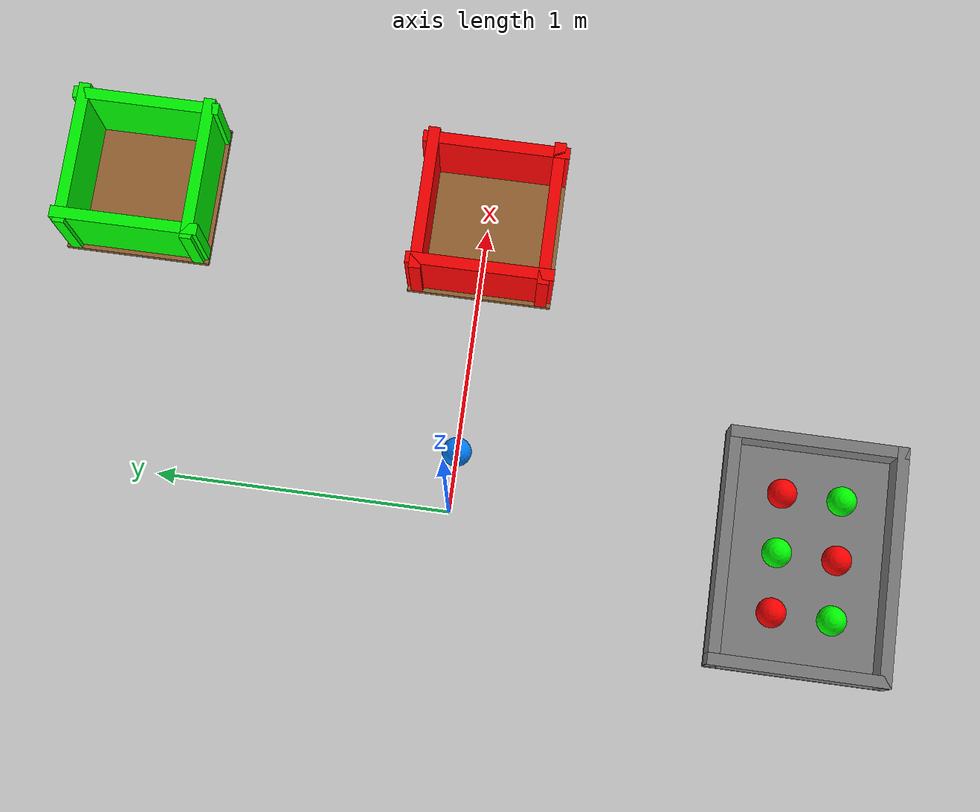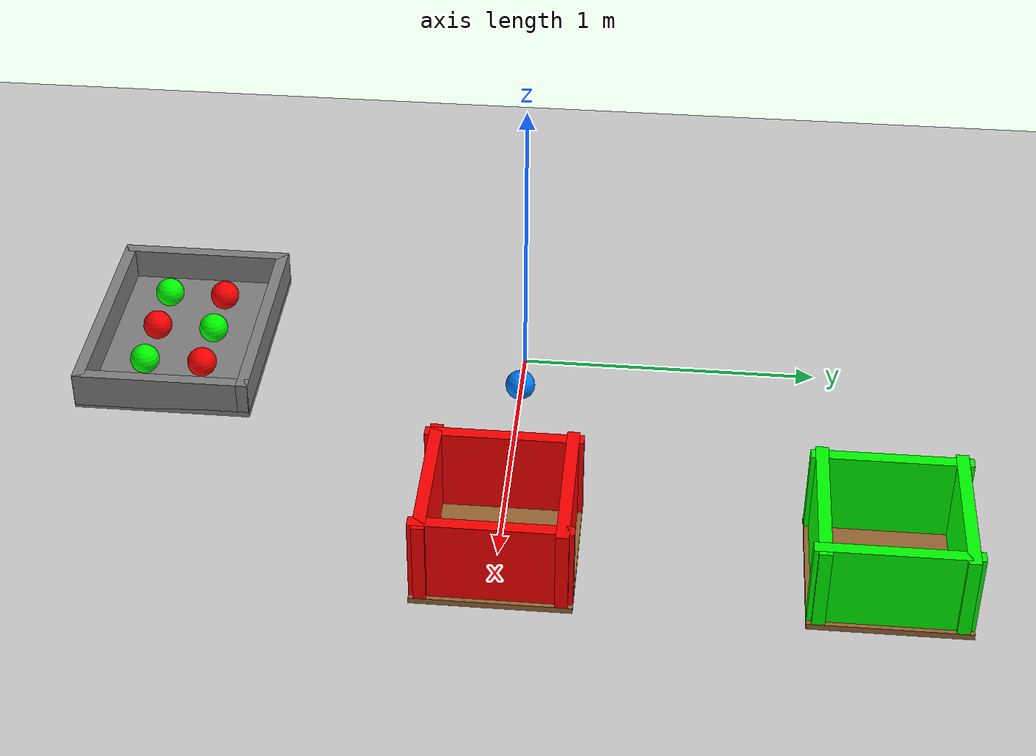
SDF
<sdf version='1.9'>
  <world name='pick_and_place_world'>
    <physics name='1ms' type='ignored'>
      <max_step_size>0.001</max_step_size>
      <real_time_factor>1</real_time_factor>
      <real_time_update_rate>1000</real_time_update_rate>
    </physics>
    <plugin name='gz::sim::systems::Physics' filename='ignition-gazebo-physics-system'/>
    <plugin name='gz::sim::systems::UserCommands' filename='ignition-gazebo-user-commands-system'/>
    <plugin name='gz::sim::systems::SceneBroadcaster' filename='ignition-gazebo-scene-broadcaster-system'/>
    <plugin name='gz::sim::systems::Contact' filename='ignition-gazebo-contact-system'/>
    <gravity>0 0 -9.8</gravity>
    <magnetic_field>6e-06 2.3e-05 -4.2e-05</magnetic_field>
    <atmosphere type='adiabatic'/>
    <scene>
      <ambient>0.4 0.4 0.4 1</ambient>
      <background>0.7 0.7 0.7 1</background>
      <shadows>true</shadows>
    </scene>

    <model name='ground_plane'>
      <static>true</static>
      <link name='link'>
        <collision name='collision'>
          <geometry>
            <plane>
              <normal>0 0 1</normal>
              <size>100 100</size>
            </plane>
          </geometry>
          <surface>
            <friction>
              <ode/>
            </friction>
            <bounce/>
            <contact/>
          </surface>
        </collision>
        <visual name='visual'>
          <geometry>
            <plane>
              <normal>0 0 1</normal>
              <size>100 100</size>
            </plane>
          </geometry>
          <material>
            <ambient>0.8 0.8 0.8 1</ambient>
            <diffuse>0.8 0.8 0.8 1</diffuse>
            <specular>0.8 0.8 0.8 1</specular>
          </material>
        </visual>
        <pose>0 0 0 0 -0 0</pose>
        <inertial>
          <pose>0 0 0 0 -0 0</pose>
          <mass>1</mass>
          <inertia>
            <ixx>1</ixx>
            <ixy>0</ixy>
            <ixz>0</ixz>
            <iyy>1</iyy>
            <iyz>0</iyz>
            <izz>1</izz>
          </inertia>
        </inertial>
        <enable_wind>false</enable_wind>
      </link>
      <pose>0 0 0 0 -0 0</pose>
      <self_collide>false</self_collide>
    </model>

    <!-- Hollow box 1 (bin) for pick-and-place -->
    <model name="bin1">
      <static>true</static>
      <!-- Base link (contains floor + walls as separate visuals/collisions) -->
      <link name="bin_link1">
        <!-- Floor -->
        <collision name="floor_collision1">
          <pose>0 0 0.01 0 0 0</pose> <!-- floor sits at z=0.01 (half of floor_thickness) -->
          <geometry>
            <box>
              <size>0.5 0.5 0.02</size> <!-- floor_thickness = 0.02 m -->
            </box>
          </geometry>
        </collision>
        <visual name="floor_visual1">
          <pose>0 0 0.01 0 0 0</pose>
          <geometry><box><size>0.5 0.5 0.02</size></box></geometry>
          <material><ambient>0.6 0.4 0.2 1</ambient><diffuse>0.6 0.4 0.2 1</diffuse></material>
        </visual>

        <!-- Walls: front, back, left, right -->
        <!-- NOTE: wall_thickness = 0.02 m, wall_height = 0.28 m (so internal height ~0.26 m) -->
        <!-- Front wall (+x direction) -->
        <collision name="wall_front_collision1">
          <pose>0.215 0 0.16 0 0 0</pose> <!-- halfX - thickness/2 = 0.25 - 0.035 => ~0.215 -->
          <geometry>
            <box>
              <size>0.04 0.5 0.28</size> <!-- thickness x depth x height -->
            </box>
          </geometry>
        </collision>
        <visual name="wall_front_visual1">
          <pose>0.215 0 0.16 0 0 0</pose>
          <geometry><box><size>0.04 0.5 0.28</size></box></geometry>
          <material><ambient>0 1 0 1</ambient><diffuse>0 1 0 1</diffuse></material>
        </visual>

        <!-- Back wall (-x direction) -->
        <collision name="wall_back_collision1">
          <pose>-0.215 0 0.16 0 0 0</pose>
          <geometry>
            <box><size>0.04 0.5 0.28</size></box>
          </geometry>
        </collision>
        <visual name="wall_back_visual1">
          <pose>-0.215 0 0.16 0 0 0</pose>
          <geometry><box><size>0.04 0.5 0.28</size></box></geometry>
          <material><ambient>0 1 0 1</ambient><diffuse>0 1 0 1</diffuse></material>
        </visual>

        <!-- Left wall (+y) -->
        <collision name="wall_left_collision1">
          <pose>0 0.215 0.16 0 0 0</pose>
          <geometry>
            <box><size>0.5 0.04 0.28</size></box>
          </geometry>
        </collision>
        <visual name="wall_left_visual1">
          <pose>0 0.215 0.16 0 0 0</pose>
          <geometry><box><size>0.5 0.04 0.28</size></box></geometry>
          <material><ambient>0 1 0 1</ambient><diffuse>0 1 0 1</diffuse></material>
        </visual>

        <!-- Right wall (-y) -->
        <collision name="wall_right_collision1">
          <pose>0 -0.215 0.16 0 0 0</pose>
          <geometry>
            <box><size>0.5 0.04 0.28</size></box>
          </geometry>
        </collision>
        <visual name="wall_right_visual1">
          <pose>0 -0.215 0.16 0 0 0</pose>
          <geometry><box><size>0.5 0.04 0.28</size></box></geometry>
          <material><ambient>0 1 0 1</ambient><diffuse>0 1 0 1</diffuse></material>
        </visual>

        <!-- recommended contact surface parameters (optional tweak) -->
        <surface>
          <friction>
            <ode/>
          </friction>
          <bounce/>
          <contact/>
        </surface>
      </link>

      <!-- Place the whole bin closer to the robot -->
      <pose>1.0 1.2 0 0 0 0</pose> <!-- x y z roll pitch yaw (meters, radians) -->
    </model>

    <!-- Hollow box 2 (bin) for pick-and-place -->
    <model name="bin2">
      <static>true</static>
      <!-- Base link (contains floor + walls as separate visuals/collisions) -->
      <link name="bin_link2">
        <!-- Floor -->
        <collision name="floor_collision2">
          <pose>0 0 0.01 0 0 0</pose> <!-- floor sits at z=0.01 (half of floor_thickness) -->
          <geometry>
            <box>
              <size>0.5 0.5 0.02</size> <!-- floor_thickness = 0.02 m -->
            </box>
          </geometry>
        </collision>
        <visual name="floor_visual2">
          <pose>0 0 0.01 0 0 0</pose>
          <geometry><box><size>0.5 0.5 0.02</size></box></geometry>
          <material><ambient>0.6 0.4 0.2 1</ambient><diffuse>0.6 0.4 0.2 1</diffuse></material>
        </visual>

        <!-- Walls: front, back, left, right -->
        <!-- NOTE: wall_thickness = 0.02 m, wall_height = 0.28 m (so internal height ~0.26 m) -->
        <!-- Front wall (+x direction) -->
        <collision name="wall_front_collision2">
          <pose>0.215 0 0.16 0 0 0</pose> <!-- halfX - thickness/2 = 0.25 - 0.035 => ~0.215 -->
          <geometry>
            <box>
              <size>0.04 0.5 0.28</size> <!-- thickness x depth x height -->
            </box>
          </geometry>
        </collision>
        <visual name="wall_front_visual2">
          <pose>0.215 0 0.16 0 0 0</pose>
          <geometry><box><size>0.04 0.5 0.28</size></box></geometry>
          <material><ambient>1 0 0 1</ambient><diffuse>1 0 0 1</diffuse></material>
        </visual>

        <!-- Back wall (-x direction) -->
        <collision name="wall_back_collision2">
          <pose>-0.215 0 0.16 0 0 0</pose>
          <geometry>
            <box><size>0.04 0.5 0.28</size></box>
          </geometry>
        </collision>
        <visual name="wall_back_visual2">
          <pose>-0.215 0 0.16 0 0 0</pose>
          <geometry><box><size>0.04 0.5 0.28</size></box></geometry>
          <material><ambient>1 0 0 1</ambient><diffuse>1 0 0 1</diffuse></material>
        </visual>

        <!-- Left wall (+y) -->
        <collision name="wall_left_collision2">
          <pose>0 0.215 0.16 0 0 0</pose>
          <geometry>
            <box><size>0.5 0.04 0.28</size></box>
          </geometry>
        </collision>
        <visual name="wall_left_visual2">
          <pose>0 0.215 0.16 0 0 0</pose>
          <geometry><box><size>0.5 0.04 0.28</size></box></geometry>
          <material><ambient>1 0 0 1</ambient><diffuse>1 0 0 1</diffuse></material>
        </visual>

        <!-- Right wall (-y) -->
        <collision name="wall_right_collision2">
          <pose>0 -0.215 0.16 0 0 0</pose>
          <geometry>
            <box><size>0.5 0.04 0.28</size></box>
          </geometry>
        </collision>
        <visual name="wall_right_visual2">
          <pose>0 -0.215 0.16 0 0 0</pose>
          <geometry><box><size>0.5 0.04 0.28</size></box></geometry>
          <material><ambient>1 0 0 1</ambient><diffuse>1 0 0 1</diffuse></material>
        </visual>

        <!-- recommended contact surface parameters (optional tweak) -->
        <surface>
          <friction>
            <ode/>
          </friction>
          <bounce/>
          <contact/>
        </surface>
      </link>

      <!-- Place the whole bin closer to the robot -->
      <pose>1.0 0 0 0 0 0</pose> <!-- x y z roll pitch yaw (meters, radians) -->
    </model>

    <!-- BIN 3: low rectangular tray (symmetrically enlarged) -->
    <model name="bin3">
      <static>true</static>
      <link name="bin3_link">

        <!-- floor: outer_x=0.8, outer_y=0.6, floor_thickness=0.02 -->
        <collision name="floor_collision3">
          <pose>0 0 0.01 0 0 0</pose>     <!-- floor sits at z = floor_thickness/2 (in model frame) -->
          <geometry>
            <box>
              <size>0.8 0.6 0.02</size>
            </box>
          </geometry>
        </collision>
        <visual name="floor_visual3">
          <pose>0 0 0.01 0 0 0</pose>
          <geometry><box><size>0.8 0.6 0.02</size></box></geometry>
          <material>
            <ambient>0.5 0.5 0.5 1</ambient>
            <diffuse>0.5 0.5 0.5 1</diffuse>
          </material>
        </visual>

        <!-- front wall (+x) -->
        <collision name="wall_front_collision3">
          <pose>0.38 0 0.07 0 0 0</pose>
          <geometry><box><size>0.04 0.6 0.12</size></box></geometry>
        </collision>
        <visual name="wall_front_visual3">
          <pose>0.38 0 0.07 0 0 0</pose>
          <geometry><box><size>0.04 0.6 0.12</size></box></geometry>
          <material><ambient>0.5 0.5 0.5 1</ambient><diffuse>0.5 0.5 0.5 1</diffuse></material>
        </visual>

        <!-- back wall (-x) -->
        <collision name="wall_back_collision3">
          <pose>-0.38 0 0.07 0 0 0</pose>
          <geometry><box><size>0.04 0.6 0.12</size></box></geometry>
        </collision>
        <visual name="wall_back_visual3">
          <pose>-0.38 0 0.07 0 0 0</pose>
          <geometry><box><size>0.04 0.6 0.12</size></box></geometry>
          <material><ambient>0.5 0.5 0.5 1</ambient><diffuse>0.5 0.5 0.5 1</diffuse></material>
        </visual>

        <!-- left wall (+y) -->
        <collision name="wall_left_collision3">
          <pose>0 0.28 0.07 0 0 0</pose>
          <geometry><box><size>0.8 0.04 0.12</size></box></geometry>
        </collision>
        <visual name="wall_left_visual3">
          <pose>0 0.28 0.07 0 0 0</pose>
          <geometry><box><size>0.8 0.04 0.12</size></box></geometry>
          <material><ambient>0.5 0.5 0.5 1</ambient><diffuse>0.5 0.5 0.5 1</diffuse></material>
        </visual>

        <!-- right wall (-y) -->
        <collision name="wall_right_collision3">
          <pose>0 -0.28 0.07 0 0 0</pose>
          <geometry><box><size>0.8 0.04 0.12</size></box></geometry>
        </collision>
        <visual name="wall_right_visual3">
          <pose>0 -0.28 0.07 0 0 0</pose>
          <geometry><box><size>0.8 0.04 0.12</size></box></geometry>
          <material><ambient>0.5 0.5 0.5 1</ambient><diffuse>0.5 0.5 0.5 1</diffuse></material>
        </visual>

        <surface>
          <friction><ode/></friction>
          <bounce/>
          <contact/>
        </surface>

      </link>

      <!-- model pose remains the same: this is the tray CENTER in world coordinates -->
      <pose>0.0 -1.2 0 0 0 3.14</pose>
    </model>

    <!-- 6 balls placed with margin from tray walls (world coordinates) -->
    <model name="ball_1_green">
      <static>false</static>
      <link name="link">
        <pose>0.2000 -1.3000 0.0700 0 0 0</pose>
        <collision name="collision"><geometry><sphere><radius>0.05</radius></sphere></geometry></collision>
        <visual name="visual">
          <geometry><sphere><radius>0.05</radius></sphere></geometry>
          <material><ambient>0 1 0 1</ambient><diffuse>0 1 0 1</diffuse></material>
        </visual>
      </link>
    </model>

    <model name="ball_2_red">
      <static>false</static>
      <link name="link">
        <pose>0.0000 -1.3000 0.0700 0 0 0</pose>
        <collision name="collision"><geometry><sphere><radius>0.05</radius></sphere></geometry></collision>
        <visual name="visual">
          <geometry><sphere><radius>0.05</radius></sphere></geometry>
          <material><ambient>1 0 0 1</ambient><diffuse>1 0 0 1</diffuse></material>
        </visual>
      </link>
    </model>

    <model name="ball_3_green">
      <static>false</static>
      <link name="link">
        <pose>-0.2000 -1.3000 0.0700 0 0 0</pose>
        <collision name="collision"><geometry><sphere><radius>0.05</radius></sphere></geometry></collision>
        <visual name="visual">
          <geometry><sphere><radius>0.05</radius></sphere></geometry>
          <material><ambient>0 1 0 1</ambient><diffuse>0 1 0 1</diffuse></material>
        </visual>
      </link>
    </model>

    <model name="ball_4_red">
      <static>false</static>
      <link name="link">
        <pose>0.2000 -1.1000 0.0700 0 0 0</pose>
        <collision name="collision"><geometry><sphere><radius>0.05</radius></sphere></geometry></collision>
        <visual name="visual">
          <geometry><sphere><radius>0.05</radius></sphere></geometry>
          <material><ambient>1 0 0 1</ambient><diffuse>1 0 0 1</diffuse></material>
        </visual>
      </link>
    </model>

    <model name="ball_5_green">
      <static>false</static>
      <link name="link">
        <pose>0.0000 -1.1000 0.0700 0 0 0</pose>
        <collision name="collision"><geometry><sphere><radius>0.05</radius></sphere></geometry></collision>
        <visual name="visual">
          <geometry><sphere><radius>0.05</radius></sphere></geometry>
          <material><ambient>0 1 0 1</ambient><diffuse>0 1 0 1</diffuse></material>
        </visual>
      </link>
    </model>

    <model name="ball_6_red">
      <static>false</static>
      <link name="link">
        <pose>-0.2000 -1.1000 0.0700 0 0 0</pose>
        <collision name="collision"><geometry><sphere><radius>0.05</radius></sphere></geometry></collision>
        <visual name="visual">
          <geometry><sphere><radius>0.05</radius></sphere></geometry>
          <material><ambient>1 0 0 1</ambient><diffuse>1 0 0 1</diffuse></material>
        </visual>
      </link>
    </model>

    <!-- Random ball -->
    <model name='blue_ball'>
      <static>false</static>
      <link name='link'>
        <pose>0.2 0 0.05 0 0 0</pose>
        <collision name='collision'>
          <geometry>
            <sphere>
              <radius>0.05</radius>
            </sphere>
          </geometry>
        </collision>
        <visual name='visual'>
          <geometry>
            <sphere>
              <radius>0.05</radius>
            </sphere>
          </geometry>
          <material>
            <ambient>0 0.5 1 1</ambient>
            <diffuse>0 0.5 1 1</diffuse>
          </material>
        </visual>
      </link>
    </model>

    <light name='sun' type='directional'>
      <pose>0 0 10 0 -0 0</pose>
      <cast_shadows>true</cast_shadows>
      <intensity>1</intensity>
      <direction>-0.5 0.1 -0.9</direction>
      <diffuse>0.8 0.8 0.8 1</diffuse>
      <specular>0.2 0.2 0.2 1</specular>
      <attenuation>
        <range>1000</range>
        <linear>0.01</linear>
        <constant>0.90000000000000002</constant>
        <quadratic>0.001</quadratic>
      </attenuation>
      <spot>
        <inner_angle>0</inner_angle>
        <outer_angle>0</outer_angle>
        <falloff>0</falloff>
      </spot>
    </light>
  </world>
</sdf>
